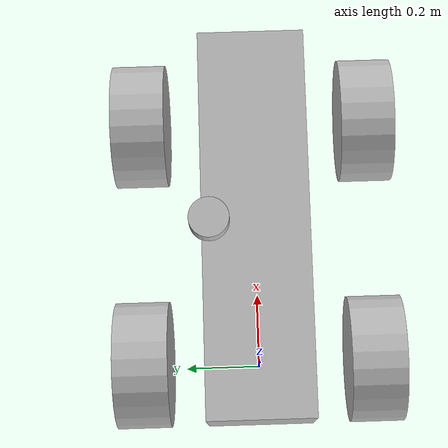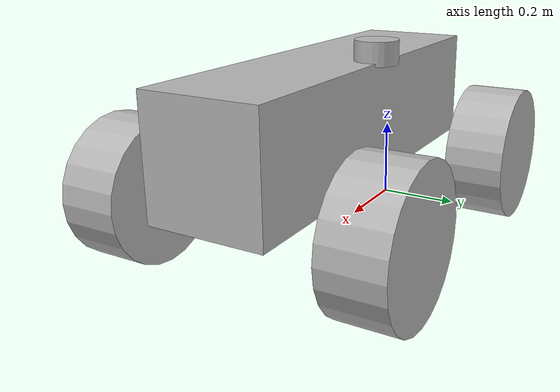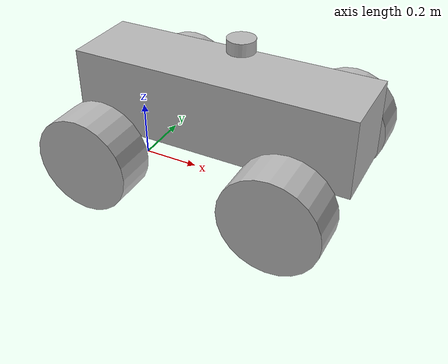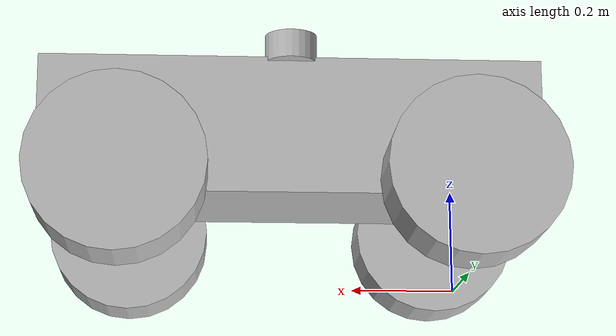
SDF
<?xml version="1.0"?>
<sdf version="1.6">

    <model name="hunter_v2">
        <pose>0.0 0.0 0.166 0.0 0.0 0.0</pose>

        <link name="base_link">
            <inertial>
                <pose>0.325 0.0 0.135 0.0 0.0 0.0</pose>
                <inertia>
                    <ixx>0.79</ixx>
                    <ixy>0</ixy>
                    <ixz>0</ixz>
                    <iyy>5.59</iyy>
                    <iyz>0</iyz>
                    <izz>5.59</izz>
                </inertia>
                <mass>65</mass>
            </inertial>
            <collision name="base_link_collision">
                <pose>0.325 0.0 0.135 0.0 0.0 0.0</pose>
                <geometry>
                    <box>
                        <size>0.98 0.27 0.27</size>
                    </box>
                </geometry>
            </collision>
            <visual name="base_link_visual">
                <pose>0.325 0.0 0.135 0.0 0.0 0.0</pose>
                <geometry>
                    <box>
                        <size>0.98 0.27 0.27</size>
                    </box>
                </geometry>
            </visual>
        </link>

        <!--rear left wheel-->
        <joint name="rear_left_wheel_joint" type="revolute">
            <parent>base_link</parent>
            <child>rear_left_wheel_link</child>
            <axis>
                <xyz>0 1 0</xyz>
            </axis>
        </joint>

        <link name="rear_left_wheel_link">
            <pose>0.0 0.3025 0.0 0.0 0.0 0.0</pose>
            <inertial>
                <pose>0 0 0 -1.5707 0 0</pose>
                <inertia>
                    <ixx>0.00843</ixx>
                    <ixy>0</ixy>
                    <ixz>0</ixz>
                    <iyy>0.00843</iyy>
                    <iyz>0</iyz>
                    <izz>0.01361</izz>
                </inertia>
                <mass>1</mass>
            </inertial>
            <collision name="rear_left_wheel_collision">
                <pose>0.0 0.0 0.0 -1.5707 0.0 0.0</pose>
                <geometry>
                    <cylinder>
                        <radius>0.165</radius>
                        <length>0.001</length>
                    </cylinder>
                </geometry>
            </collision>
            <visual name="rear_left_wheel_visual">
                <pose>0.0 0.0 0.0 -1.5707 0.0 0.0</pose>
                <geometry>
                    <cylinder>
                        <radius>0.165</radius>
                        <length>0.14</length>
                    </cylinder>
                </geometry>
            </visual>
        </link>

        <!--rear right wheel-->
        <joint name="rear_right_wheel_joint" type="revolute">
            <parent>base_link</parent>
            <child>rear_right_wheel_link</child>
            <axis>
                <xyz>0 1 0</xyz>
            </axis>
        </joint>

        <link name="rear_right_wheel_link">
            <pose>0.0 -0.3025 0.0 0.0 0.0 0.0</pose>
            <inertial>
                <pose>0 0 0 -1.5707 0 0</pose>
                <inertia>
                    <ixx>0.00843</ixx>
                    <ixy>0</ixy>
                    <ixz>0</ixz>
                    <iyy>0.00843</iyy>
                    <iyz>0</iyz>
                    <izz>0.01361</izz>
                </inertia>
                <mass>1</mass>
            </inertial>
            <collision name="rear_right_wheel_collision">
                <pose>0.0 0.0 0.0 -1.5707 0.0 0.0</pose>
                <geometry>
                    <cylinder>
                        <radius>0.165</radius>
                        <length>0.001</length>
                    </cylinder>
                </geometry>
            </collision>
            <visual name="rear_right_wheel_visual">
                <pose>0.0 0.0 0.0 -1.5707 0.0 0.0</pose>
                <geometry>
                    <cylinder>
                        <radius>0.165</radius>
                        <length>0.14</length>
                    </cylinder>
                </geometry>
            </visual>
        </link>

        <!--front left-->
        <joint name='front_left_steer_joint' type='revolute'>
            <parent>base_link</parent>
            <child>front_left_steer_link</child>
            <axis>
                <xyz>0 0 1</xyz>
                <limit>
                    <lower>-0.7853981633974483</lower>
                    <upper>0.7853981633974483</upper>
                    <effort>-1</effort>
                    <velocity>-1</velocity>
                </limit>
            </axis>
        </joint>

        <link name='front_left_steer_link'>
            <pose>0.65 0.3025 0 0 0 0</pose>
            <inertial>
                <inertia>
                    <ixx>0.001</ixx>
                    <ixy>0</ixy>
                    <ixz>0</ixz>
                    <iyy>0.001</iyy>
                    <iyz>0</iyz>
                    <izz>0.001</izz>
                </inertia>
                <mass>0.1</mass>
            </inertial>
        </link>

        <joint name='front_left_wheel_joint' type='revolute'>
            <parent>front_left_steer_link</parent>
            <child>front_left_wheel_link</child>
            <axis>
                <xyz>0 1 0</xyz>
                <limit>
                    <lower>-1e+16</lower>
                    <upper>1e+16</upper>
                    <effort>-1</effort>
                    <velocity>-1</velocity>
                </limit>
            </axis>
        </joint>

        <link name='front_left_wheel_link'>
            <pose>0.65 0.3025 0 0 -0 0</pose>
            <inertial>
                <pose>0 0 0 -1.5707 0 0</pose>
                <inertia>
                    <ixx>0.00843</ixx>
                    <ixy>0</ixy>
                    <ixz>0</ixz>
                    <iyy>0.00843</iyy>
                    <iyz>0</iyz>
                    <izz>0.01361</izz>
                </inertia>
                <mass>1</mass>
            </inertial>
            <visual name='front_left_wheel_visual'>
                <pose>0 0 0 -1.5707 0 0</pose>
                <geometry>
                    <cylinder>
                        <radius>0.165</radius>
                        <length>0.14</length>
                    </cylinder>
                </geometry>
            </visual>
            <collision name='front_left_wheel_collision'>
                <pose>0 0 0 -1.5707 0 0</pose>
                <geometry>
                    <cylinder>
                        <radius>0.165</radius>
                        <length>0.001</length>
                    </cylinder>
                </geometry>
            </collision>
        </link>

        <!--front right-->
        <joint name='front_right_steer_joint' type='revolute'>
            <parent>base_link</parent>
            <child>front_right_steer_link</child>
            <axis>
                <xyz>0 0 1</xyz>
                <limit>
                    <lower>-0.7853981633974483</lower>
                    <upper>0.7853981633974483</upper>
                    <effort>-1</effort>
                    <velocity>-1</velocity>
                </limit>
            </axis>
        </joint>

        <link name='front_right_steer_link'>
            <pose>0.65 -0.3025 0 0 -0 0</pose>
            <inertial>
                <inertia>
                    <ixx>0.001</ixx>
                    <ixy>0</ixy>
                    <ixz>0</ixz>
                    <iyy>0.001</iyy>
                    <iyz>0</iyz>
                    <izz>0.001</izz>
                </inertia>
                <mass>0.1</mass>
            </inertial>
        </link>

        <joint name='front_right_wheel_joint' type='revolute'>
            <parent>front_right_steer_link</parent>
            <child>front_right_wheel_link</child>
            <axis>
                <xyz>0 1 0</xyz>
                <limit>
                    <lower>-1e+16</lower>
                    <upper>1e+16</upper>
                    <effort>-1</effort>
                    <velocity>-1</velocity>
                </limit>
            </axis>
        </joint>

        <link name='front_right_wheel_link'>
            <pose>0.65 -0.3025 0 0 -0 0</pose>
            <inertial>
                <pose>0 0 0 -1.5707 0 0</pose>
                <inertia>
                    <ixx>0.00843</ixx>
                    <ixy>0</ixy>
                    <ixz>0</ixz>
                    <iyy>0.00843</iyy>
                    <iyz>0</iyz>
                    <izz>0.01361</izz>
                </inertia>
                <mass>1</mass>
            </inertial>
            <visual name='front_right_wheel_visual'>
                <pose>0 0 0 -1.5707 0 0</pose>
                <geometry>
                    <cylinder>
                        <radius>0.165</radius>
                        <length>0.14</length>
                    </cylinder>
                </geometry>
            </visual>
            <collision name='front_right_wheel_collision'>
                <pose>0 0 0 -1.5707 0 0</pose>
                <geometry>
                    <cylinder>
                        <radius>0.165</radius>
                        <length>0.001</length>
                    </cylinder>
                </geometry>
            </collision>
        </link>

        <!--sensor-->
        <joint name="scan_joint" type="fixed">
            <pose>0.325 0.115 0.29 0.0 0.0 0.0</pose>
            <parent>base_link</parent>
            <child>base_scan</child>
            <axis>
                <xyz>0 0 1</xyz>
            </axis>
        </joint>

        <link name="base_scan">
            <pose>0.325 0.115 0.29 0.0 0.0 0.0</pose>
            <inertial>
                <inertia>
                    <ixx>0.001</ixx>
                    <ixy>0</ixy>
                    <ixz>0</ixz>
                    <iyy>0.001</iyy>
                    <iyz>0</iyz>
                    <izz>0.001</izz>
                </inertia>
                <mass>1</mass>
            </inertial>
            <collision name="lidar_sensor_collision">
                <geometry>
                    <cylinder>
                        <radius>0.0508</radius>
                        <length>0.055</length>
                    </cylinder>
                </geometry>
            </collision>
            <visual name="lidar_sensor_visual">
                <geometry>
                    <cylinder>
                        <radius>0.0508</radius>
                        <length>0.055</length>
                    </cylinder>
                </geometry>
            </visual>

            <sensor name="lidar_sensor" type="ray">
                <always_on>true</always_on>
                <visualize>false</visualize>
                <update_rate>10</update_rate>
                <ray>
                    <scan>
                        <horizontal>
                            <samples>360</samples>
                            <resolution>1.0</resolution>
                            <min_angle>-3.141592653589793</min_angle>
                            <max_angle>3.141592653589793</max_angle>
                        </horizontal>
                    </scan>
                    <range>
                        <min>0.2</min>
                        <max>30.0</max>
                        <resolution>0.015</resolution>
                    </range>
                    <noise>
                        <type>gaussian</type>
                        <mean>0.0</mean>
                        <stddev>0.01</stddev>
                    </noise>
                </ray>
                <plugin name="laserscan_realistic_plugin" filename="libgazebo_ros_ray_sensor.so">
                    <ros>
                        <remapping>~/out:=scan</remapping>
                    </ros>
                    <output_type>sensor_msgs/LaserScan</output_type>
                    <frame_name>base_scan</frame_name>
                </plugin>
            </sensor>
        </link>

        <plugin name='ackermann_drive_plugin' filename='libgazebo_ros_ackermann_drive.so'>
            <ros>
                <remapping>distance:=distance_demo</remapping>
            </ros>

            <update_rate>100.0</update_rate>

            <!-- wheels -->
            <front_left_joint>front_left_wheel_joint</front_left_joint>
            <front_right_joint>front_right_wheel_joint</front_right_joint>
            <rear_left_joint>rear_left_wheel_joint</rear_left_joint>
            <rear_right_joint>rear_right_wheel_joint</rear_right_joint>
            <left_steering_joint>front_left_steer_joint</left_steering_joint>
            <right_steering_joint>front_right_steer_joint</right_steering_joint>

            <!-- Max absolute steer angle for tyre in radians-->
            <!-- Any cmd_vel angular z greater than this would be capped -->
            <max_steer>0.6458</max_steer>

            <!-- Max absolute steering angle of steering wheel -->
            <max_steering_angle>7.85</max_steering_angle>

            <!-- Max absolute linear speed in m/s -->
            <max_speed>20</max_speed>

            <!-- PID tuning -->
            <left_steering_pid_gain>1 0 1</left_steering_pid_gain>
            <left_steering_i_range>0 0</left_steering_i_range>

            <right_steering_pid_gain>1 0 1</right_steering_pid_gain>
            <right_steering_i_range>0 0</right_steering_i_range>

            <linear_velocity_pid_gain>1000 0 0</linear_velocity_pid_gain>
            <linear_velocity_i_range>-10 10</linear_velocity_i_range>
            <linear_velocity_pid_cmd_range>-200 200</linear_velocity_pid_cmd_range>

            <!-- output -->
            <publish_odom>true</publish_odom>
            <publish_odom_tf>true</publish_odom_tf>
            <publish_wheel_tf>true</publish_wheel_tf>
            <publish_distance>true</publish_distance>

            <odometry_frame>odom</odometry_frame>
            <robot_base_frame>base_link</robot_base_frame>

            <publish_ground_truth>true</publish_ground_truth>
            <publish_ground_truth_tf>true</publish_ground_truth_tf>
            <ground_truth_parent_frame>map</ground_truth_parent_frame>
            <ground_truth_robot_base_frame>base_footprint_gt</ground_truth_robot_base_frame>

            <odometry_source>2</odometry_source>
            <alpha1>0.07</alpha1>
            <alpha2>0.07</alpha2>
            <alpha3>0.02</alpha3>
            <alpha4>0.02</alpha4>

        </plugin>

    </model>
</sdf>
